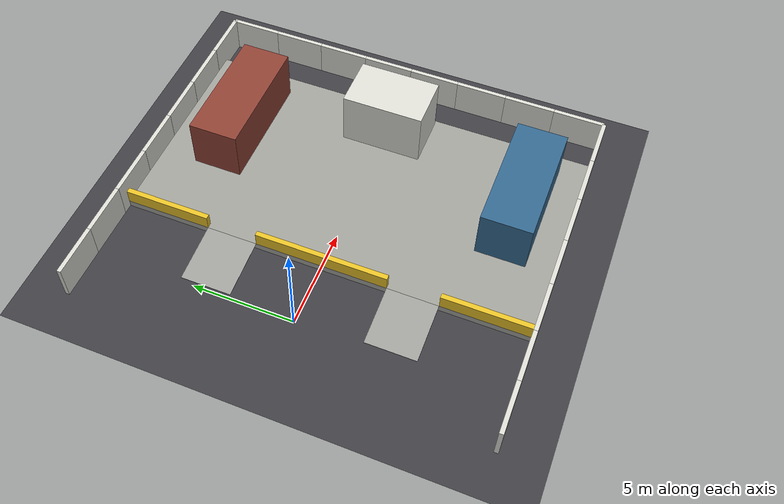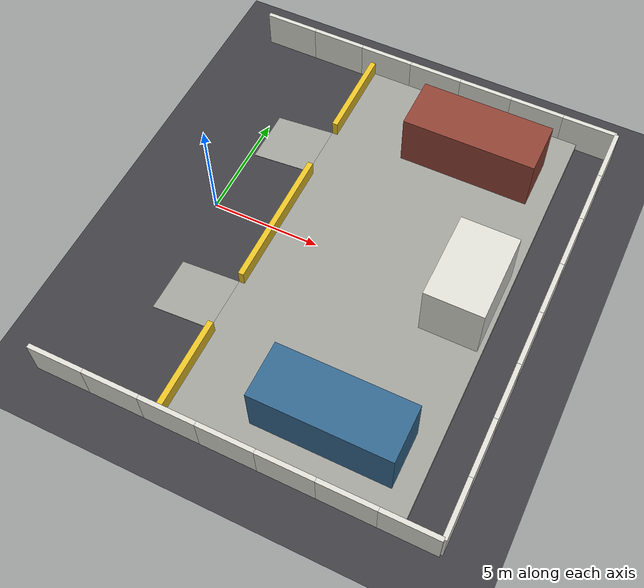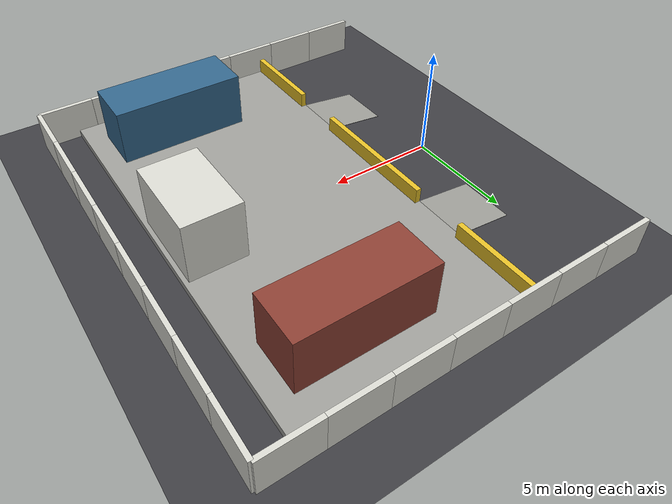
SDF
<sdf version="1.9">
 <world name="default">
  <model name="ground_plane">
   <static>true</static>
   <link name="link">
    <collision name="collision">
     <geometry><plane><normal>0 0 1</normal><size>200 200</size></plane></geometry>
     <surface><friction><ode><mu>0.9</mu><mu2>0.9</mu2></ode></friction></surface>
    </collision>
    <visual name="visual">
     <geometry><plane><normal>0 0 1</normal><size>200 200</size></plane></geometry>
     <material>
      <ambient>0.120 0.120 0.130 1</ambient>
      <diffuse>0.240 0.240 0.260 1</diffuse>
      <specular>0.05 0.05 0.05 1</specular>
      <pbr>
       <metal>
        <albedo_map>materials/textures/asphalt.png</albedo_map>
        <metalness>0.0</metalness>
        <roughness>0.9</roughness>
       </metal>
      </pbr>
     </material>
    </visual>
   </link>
  </model>
  <model name="wall_east_0">
   <static>true</static>
   <pose>15.10000 -8.83750 0.90000 0 0.000000 0</pose>
   <link name="link">
    <collision name="collision">
     <geometry><box><size>0.20000 2.52500 1.80000</size></box></geometry>
     <surface><friction><ode><mu>1.0</mu><mu2>1.0</mu2></ode></friction></surface>
    </collision>
    <visual name="visual">
     <geometry><box><size>0.20000 2.52500 1.80000</size></box></geometry>
     <material>
      <ambient>0.425 0.425 0.410 1</ambient>
      <diffuse>0.850 0.850 0.820 1</diffuse>
      <specular>0.1 0.1 0.1 1</specular>
      <pbr>
       <metal>
        <albedo_map>materials/textures/painted_wall.png</albedo_map>
        <metalness>0.0</metalness>
        <roughness>0.85</roughness>
       </metal>
      </pbr>
     </material>
    </visual>
   </link>
  </model>
  <model name="wall_east_1">
   <static>true</static>
   <pose>15.10000 -6.31250 0.90000 0 0.000000 0</pose>
   <link name="link">
    <collision name="collision">
     <geometry><box><size>0.20000 2.52500 1.80000</size></box></geometry>
     <surface><friction><ode><mu>1.0</mu><mu2>1.0</mu2></ode></friction></surface>
    </collision>
    <visual name="visual">
     <geometry><box><size>0.20000 2.52500 1.80000</size></box></geometry>
     <material>
      <ambient>0.425 0.425 0.410 1</ambient>
      <diffuse>0.850 0.850 0.820 1</diffuse>
      <specular>0.1 0.1 0.1 1</specular>
      <pbr>
       <metal>
        <albedo_map>materials/textures/painted_wall.png</albedo_map>
        <metalness>0.0</metalness>
        <roughness>0.85</roughness>
       </metal>
      </pbr>
     </material>
    </visual>
   </link>
  </model>
  <model name="wall_east_2">
   <static>true</static>
   <pose>15.10000 -3.78750 0.90000 0 0.000000 0</pose>
   <link name="link">
    <collision name="collision">
     <geometry><box><size>0.20000 2.52500 1.80000</size></box></geometry>
     <surface><friction><ode><mu>1.0</mu><mu2>1.0</mu2></ode></friction></surface>
    </collision>
    <visual name="visual">
     <geometry><box><size>0.20000 2.52500 1.80000</size></box></geometry>
     <material>
      <ambient>0.425 0.425 0.410 1</ambient>
      <diffuse>0.850 0.850 0.820 1</diffuse>
      <specular>0.1 0.1 0.1 1</specular>
      <pbr>
       <metal>
        <albedo_map>materials/textures/painted_wall.png</albedo_map>
        <metalness>0.0</metalness>
        <roughness>0.85</roughness>
       </metal>
      </pbr>
     </material>
    </visual>
   </link>
  </model>
  <model name="wall_east_3">
   <static>true</static>
   <pose>15.10000 -1.26250 0.90000 0 0.000000 0</pose>
   <link name="link">
    <collision name="collision">
     <geometry><box><size>0.20000 2.52500 1.80000</size></box></geometry>
     <surface><friction><ode><mu>1.0</mu><mu2>1.0</mu2></ode></friction></surface>
    </collision>
    <visual name="visual">
     <geometry><box><size>0.20000 2.52500 1.80000</size></box></geometry>
     <material>
      <ambient>0.425 0.425 0.410 1</ambient>
      <diffuse>0.850 0.850 0.820 1</diffuse>
      <specular>0.1 0.1 0.1 1</specular>
      <pbr>
       <metal>
        <albedo_map>materials/textures/painted_wall.png</albedo_map>
        <metalness>0.0</metalness>
        <roughness>0.85</roughness>
       </metal>
      </pbr>
     </material>
    </visual>
   </link>
  </model>
  <model name="wall_east_4">
   <static>true</static>
   <pose>15.10000 1.26250 0.90000 0 0.000000 0</pose>
   <link name="link">
    <collision name="collision">
     <geometry><box><size>0.20000 2.52500 1.80000</size></box></geometry>
     <surface><friction><ode><mu>1.0</mu><mu2>1.0</mu2></ode></friction></surface>
    </collision>
    <visual name="visual">
     <geometry><box><size>0.20000 2.52500 1.80000</size></box></geometry>
     <material>
      <ambient>0.425 0.425 0.410 1</ambient>
      <diffuse>0.850 0.850 0.820 1</diffuse>
      <specular>0.1 0.1 0.1 1</specular>
      <pbr>
       <metal>
        <albedo_map>materials/textures/painted_wall.png</albedo_map>
        <metalness>0.0</metalness>
        <roughness>0.85</roughness>
       </metal>
      </pbr>
     </material>
    </visual>
   </link>
  </model>
  <model name="wall_east_5">
   <static>true</static>
   <pose>15.10000 3.78750 0.90000 0 0.000000 0</pose>
   <link name="link">
    <collision name="collision">
     <geometry><box><size>0.20000 2.52500 1.80000</size></box></geometry>
     <surface><friction><ode><mu>1.0</mu><mu2>1.0</mu2></ode></friction></surface>
    </collision>
    <visual name="visual">
     <geometry><box><size>0.20000 2.52500 1.80000</size></box></geometry>
     <material>
      <ambient>0.425 0.425 0.410 1</ambient>
      <diffuse>0.850 0.850 0.820 1</diffuse>
      <specular>0.1 0.1 0.1 1</specular>
      <pbr>
       <metal>
        <albedo_map>materials/textures/painted_wall.png</albedo_map>
        <metalness>0.0</metalness>
        <roughness>0.85</roughness>
       </metal>
      </pbr>
     </material>
    </visual>
   </link>
  </model>
  <model name="wall_east_6">
   <static>true</static>
   <pose>15.10000 6.31250 0.90000 0 0.000000 0</pose>
   <link name="link">
    <collision name="collision">
     <geometry><box><size>0.20000 2.52500 1.80000</size></box></geometry>
     <surface><friction><ode><mu>1.0</mu><mu2>1.0</mu2></ode></friction></surface>
    </collision>
    <visual name="visual">
     <geometry><box><size>0.20000 2.52500 1.80000</size></box></geometry>
     <material>
      <ambient>0.425 0.425 0.410 1</ambient>
      <diffuse>0.850 0.850 0.820 1</diffuse>
      <specular>0.1 0.1 0.1 1</specular>
      <pbr>
       <metal>
        <albedo_map>materials/textures/painted_wall.png</albedo_map>
        <metalness>0.0</metalness>
        <roughness>0.85</roughness>
       </metal>
      </pbr>
     </material>
    </visual>
   </link>
  </model>
  <model name="wall_east_7">
   <static>true</static>
   <pose>15.10000 8.83750 0.90000 0 0.000000 0</pose>
   <link name="link">
    <collision name="collision">
     <geometry><box><size>0.20000 2.52500 1.80000</size></box></geometry>
     <surface><friction><ode><mu>1.0</mu><mu2>1.0</mu2></ode></friction></surface>
    </collision>
    <visual name="visual">
     <geometry><box><size>0.20000 2.52500 1.80000</size></box></geometry>
     <material>
      <ambient>0.425 0.425 0.410 1</ambient>
      <diffuse>0.850 0.850 0.820 1</diffuse>
      <specular>0.1 0.1 0.1 1</specular>
      <pbr>
       <metal>
        <albedo_map>materials/textures/painted_wall.png</albedo_map>
        <metalness>0.0</metalness>
        <roughness>0.85</roughness>
       </metal>
      </pbr>
     </material>
    </visual>
   </link>
  </model>
  <model name="wall_north_5">
   <static>true</static>
   <pose>-1.25833 10.10000 0.90000 0 0.000000 0</pose>
   <link name="link">
    <collision name="collision">
     <geometry><box><size>2.51667 0.20000 1.80000</size></box></geometry>
     <surface><friction><ode><mu>1.0</mu><mu2>1.0</mu2></ode></friction></surface>
    </collision>
    <visual name="visual">
     <geometry><box><size>2.51667 0.20000 1.80000</size></box></geometry>
     <material>
      <ambient>0.425 0.425 0.410 1</ambient>
      <diffuse>0.850 0.850 0.820 1</diffuse>
      <specular>0.1 0.1 0.1 1</specular>
      <pbr>
       <metal>
        <albedo_map>materials/textures/painted_wall.png</albedo_map>
        <metalness>0.0</metalness>
        <roughness>0.85</roughness>
       </metal>
      </pbr>
     </material>
    </visual>
   </link>
  </model>
  <model name="wall_north_6">
   <static>true</static>
   <pose>1.25833 10.10000 0.90000 0 0.000000 0</pose>
   <link name="link">
    <collision name="collision">
     <geometry><box><size>2.51667 0.20000 1.80000</size></box></geometry>
     <surface><friction><ode><mu>1.0</mu><mu2>1.0</mu2></ode></friction></surface>
    </collision>
    <visual name="visual">
     <geometry><box><size>2.51667 0.20000 1.80000</size></box></geometry>
     <material>
      <ambient>0.425 0.425 0.410 1</ambient>
      <diffuse>0.850 0.850 0.820 1</diffuse>
      <specular>0.1 0.1 0.1 1</specular>
      <pbr>
       <metal>
        <albedo_map>materials/textures/painted_wall.png</albedo_map>
        <metalness>0.0</metalness>
        <roughness>0.85</roughness>
       </metal>
      </pbr>
     </material>
    </visual>
   </link>
  </model>
  <model name="wall_north_7">
   <static>true</static>
   <pose>3.77500 10.10000 0.90000 0 0.000000 0</pose>
   <link name="link">
    <collision name="collision">
     <geometry><box><size>2.51667 0.20000 1.80000</size></box></geometry>
     <surface><friction><ode><mu>1.0</mu><mu2>1.0</mu2></ode></friction></surface>
    </collision>
    <visual name="visual">
     <geometry><box><size>2.51667 0.20000 1.80000</size></box></geometry>
     <material>
      <ambient>0.425 0.425 0.410 1</ambient>
      <diffuse>0.850 0.850 0.820 1</diffuse>
      <specular>0.1 0.1 0.1 1</specular>
      <pbr>
       <metal>
        <albedo_map>materials/textures/painted_wall.png</albedo_map>
        <metalness>0.0</metalness>
        <roughness>0.85</roughness>
       </metal>
      </pbr>
     </material>
    </visual>
   </link>
  </model>
  <model name="wall_north_8">
   <static>true</static>
   <pose>6.29167 10.10000 0.90000 0 0.000000 0</pose>
   <link name="link">
    <collision name="collision">
     <geometry><box><size>2.51667 0.20000 1.80000</size></box></geometry>
     <surface><friction><ode><mu>1.0</mu><mu2>1.0</mu2></ode></friction></surface>
    </collision>
    <visual name="visual">
     <geometry><box><size>2.51667 0.20000 1.80000</size></box></geometry>
     <material>
      <ambient>0.425 0.425 0.410 1</ambient>
      <diffuse>0.850 0.850 0.820 1</diffuse>
      <specular>0.1 0.1 0.1 1</specular>
      <pbr>
       <metal>
        <albedo_map>materials/textures/painted_wall.png</albedo_map>
        <metalness>0.0</metalness>
        <roughness>0.85</roughness>
       </metal>
      </pbr>
     </material>
    </visual>
   </link>
  </model>
  <model name="wall_north_9">
   <static>true</static>
   <pose>8.80833 10.10000 0.90000 0 0.000000 0</pose>
   <link name="link">
    <collision name="collision">
     <geometry><box><size>2.51667 0.20000 1.80000</size></box></geometry>
     <surface><friction><ode><mu>1.0</mu><mu2>1.0</mu2></ode></friction></surface>
    </collision>
    <visual name="visual">
     <geometry><box><size>2.51667 0.20000 1.80000</size></box></geometry>
     <material>
      <ambient>0.425 0.425 0.410 1</ambient>
      <diffuse>0.850 0.850 0.820 1</diffuse>
      <specular>0.1 0.1 0.1 1</specular>
      <pbr>
       <metal>
        <albedo_map>materials/textures/painted_wall.png</albedo_map>
        <metalness>0.0</metalness>
        <roughness>0.85</roughness>
       </metal>
      </pbr>
     </material>
    </visual>
   </link>
  </model>
  <model name="wall_north_10">
   <static>true</static>
   <pose>11.32500 10.10000 0.90000 0 0.000000 0</pose>
   <link name="link">
    <collision name="collision">
     <geometry><box><size>2.51667 0.20000 1.80000</size></box></geometry>
     <surface><friction><ode><mu>1.0</mu><mu2>1.0</mu2></ode></friction></surface>
    </collision>
    <visual name="visual">
     <geometry><box><size>2.51667 0.20000 1.80000</size></box></geometry>
     <material>
      <ambient>0.425 0.425 0.410 1</ambient>
      <diffuse>0.850 0.850 0.820 1</diffuse>
      <specular>0.1 0.1 0.1 1</specular>
      <pbr>
       <metal>
        <albedo_map>materials/textures/painted_wall.png</albedo_map>
        <metalness>0.0</metalness>
        <roughness>0.85</roughness>
       </metal>
      </pbr>
     </material>
    </visual>
   </link>
  </model>
  <model name="wall_north_11">
   <static>true</static>
   <pose>13.84167 10.10000 0.90000 0 0.000000 0</pose>
   <link name="link">
    <collision name="collision">
     <geometry><box><size>2.51667 0.20000 1.80000</size></box></geometry>
     <surface><friction><ode><mu>1.0</mu><mu2>1.0</mu2></ode></friction></surface>
    </collision>
    <visual name="visual">
     <geometry><box><size>2.51667 0.20000 1.80000</size></box></geometry>
     <material>
      <ambient>0.425 0.425 0.410 1</ambient>
      <diffuse>0.850 0.850 0.820 1</diffuse>
      <specular>0.1 0.1 0.1 1</specular>
      <pbr>
       <metal>
        <albedo_map>materials/textures/painted_wall.png</albedo_map>
        <metalness>0.0</metalness>
        <roughness>0.85</roughness>
       </metal>
      </pbr>
     </material>
    </visual>
   </link>
  </model>
  <model name="wall_south_5">
   <static>true</static>
   <pose>-1.25833 -10.10000 0.90000 0 0.000000 0</pose>
   <link name="link">
    <collision name="collision">
     <geometry><box><size>2.51667 0.20000 1.80000</size></box></geometry>
     <surface><friction><ode><mu>1.0</mu><mu2>1.0</mu2></ode></friction></surface>
    </collision>
    <visual name="visual">
     <geometry><box><size>2.51667 0.20000 1.80000</size></box></geometry>
     <material>
      <ambient>0.425 0.425 0.410 1</ambient>
      <diffuse>0.850 0.850 0.820 1</diffuse>
      <specular>0.1 0.1 0.1 1</specular>
      <pbr>
       <metal>
        <albedo_map>materials/textures/painted_wall.png</albedo_map>
        <metalness>0.0</metalness>
        <roughness>0.85</roughness>
       </metal>
      </pbr>
     </material>
    </visual>
   </link>
  </model>
  <model name="wall_south_6">
   <static>true</static>
   <pose>1.25833 -10.10000 0.90000 0 0.000000 0</pose>
   <link name="link">
    <collision name="collision">
     <geometry><box><size>2.51667 0.20000 1.80000</size></box></geometry>
     <surface><friction><ode><mu>1.0</mu><mu2>1.0</mu2></ode></friction></surface>
    </collision>
    <visual name="visual">
     <geometry><box><size>2.51667 0.20000 1.80000</size></box></geometry>
     <material>
      <ambient>0.425 0.425 0.410 1</ambient>
      <diffuse>0.850 0.850 0.820 1</diffuse>
      <specular>0.1 0.1 0.1 1</specular>
      <pbr>
       <metal>
        <albedo_map>materials/textures/painted_wall.png</albedo_map>
        <metalness>0.0</metalness>
        <roughness>0.85</roughness>
       </metal>
      </pbr>
     </material>
    </visual>
   </link>
  </model>
  <model name="wall_south_7">
   <static>true</static>
   <pose>3.77500 -10.10000 0.90000 0 0.000000 0</pose>
   <link name="link">
    <collision name="collision">
     <geometry><box><size>2.51667 0.20000 1.80000</size></box></geometry>
     <surface><friction><ode><mu>1.0</mu><mu2>1.0</mu2></ode></friction></surface>
    </collision>
    <visual name="visual">
     <geometry><box><size>2.51667 0.20000 1.80000</size></box></geometry>
     <material>
      <ambient>0.425 0.425 0.410 1</ambient>
      <diffuse>0.850 0.850 0.820 1</diffuse>
      <specular>0.1 0.1 0.1 1</specular>
      <pbr>
       <metal>
        <albedo_map>materials/textures/painted_wall.png</albedo_map>
        <metalness>0.0</metalness>
        <roughness>0.85</roughness>
       </metal>
      </pbr>
     </material>
    </visual>
   </link>
  </model>
  <model name="wall_south_8">
   <static>true</static>
   <pose>6.29167 -10.10000 0.90000 0 0.000000 0</pose>
   <link name="link">
    <collision name="collision">
     <geometry><box><size>2.51667 0.20000 1.80000</size></box></geometry>
     <surface><friction><ode><mu>1.0</mu><mu2>1.0</mu2></ode></friction></surface>
    </collision>
    <visual name="visual">
     <geometry><box><size>2.51667 0.20000 1.80000</size></box></geometry>
     <material>
      <ambient>0.425 0.425 0.410 1</ambient>
      <diffuse>0.850 0.850 0.820 1</diffuse>
      <specular>0.1 0.1 0.1 1</specular>
      <pbr>
       <metal>
        <albedo_map>materials/textures/painted_wall.png</albedo_map>
        <metalness>0.0</metalness>
        <roughness>0.85</roughness>
       </metal>
      </pbr>
     </material>
    </visual>
   </link>
  </model>
  <model name="wall_south_9">
   <static>true</static>
   <pose>8.80833 -10.10000 0.90000 0 0.000000 0</pose>
   <link name="link">
    <collision name="collision">
     <geometry><box><size>2.51667 0.20000 1.80000</size></box></geometry>
     <surface><friction><ode><mu>1.0</mu><mu2>1.0</mu2></ode></friction></surface>
    </collision>
    <visual name="visual">
     <geometry><box><size>2.51667 0.20000 1.80000</size></box></geometry>
     <material>
      <ambient>0.425 0.425 0.410 1</ambient>
      <diffuse>0.850 0.850 0.820 1</diffuse>
      <specular>0.1 0.1 0.1 1</specular>
      <pbr>
       <metal>
        <albedo_map>materials/textures/painted_wall.png</albedo_map>
        <metalness>0.0</metalness>
        <roughness>0.85</roughness>
       </metal>
      </pbr>
     </material>
    </visual>
   </link>
  </model>
  <model name="wall_south_10">
   <static>true</static>
   <pose>11.32500 -10.10000 0.90000 0 0.000000 0</pose>
   <link name="link">
    <collision name="collision">
     <geometry><box><size>2.51667 0.20000 1.80000</size></box></geometry>
     <surface><friction><ode><mu>1.0</mu><mu2>1.0</mu2></ode></friction></surface>
    </collision>
    <visual name="visual">
     <geometry><box><size>2.51667 0.20000 1.80000</size></box></geometry>
     <material>
      <ambient>0.425 0.425 0.410 1</ambient>
      <diffuse>0.850 0.850 0.820 1</diffuse>
      <specular>0.1 0.1 0.1 1</specular>
      <pbr>
       <metal>
        <albedo_map>materials/textures/painted_wall.png</albedo_map>
        <metalness>0.0</metalness>
        <roughness>0.85</roughness>
       </metal>
      </pbr>
     </material>
    </visual>
   </link>
  </model>
  <model name="wall_south_11">
   <static>true</static>
   <pose>13.84167 -10.10000 0.90000 0 0.000000 0</pose>
   <link name="link">
    <collision name="collision">
     <geometry><box><size>2.51667 0.20000 1.80000</size></box></geometry>
     <surface><friction><ode><mu>1.0</mu><mu2>1.0</mu2></ode></friction></surface>
    </collision>
    <visual name="visual">
     <geometry><box><size>2.51667 0.20000 1.80000</size></box></geometry>
     <material>
      <ambient>0.425 0.425 0.410 1</ambient>
      <diffuse>0.850 0.850 0.820 1</diffuse>
      <specular>0.1 0.1 0.1 1</specular>
      <pbr>
       <metal>
        <albedo_map>materials/textures/painted_wall.png</albedo_map>
        <metalness>0.0</metalness>
        <roughness>0.85</roughness>
       </metal>
      </pbr>
     </material>
    </visual>
   </link>
  </model>
  <model name="ramp_north">
   <static>true</static>
   <pose>1.60117 4.50000 0.17514 0 -0.117267 0</pose>
   <link name="link">
    <collision name="collision">
     <geometry><box><size>2.81936 2.50000 0.02000</size></box></geometry>
     <surface><friction><ode><mu>1.0</mu><mu2>1.0</mu2></ode></friction></surface>
    </collision>
    <visual name="visual">
     <geometry><box><size>2.81936 2.50000 0.02000</size></box></geometry>
     <material>
      <ambient>0.310 0.310 0.300 1</ambient>
      <diffuse>0.620 0.620 0.600 1</diffuse>
      <specular>0.1 0.1 0.1 1</specular>
      <pbr>
       <metal>
        <albedo_map>materials/textures/concrete.png</albedo_map>
        <metalness>0.0</metalness>
        <roughness>0.85</roughness>
       </metal>
      </pbr>
     </material>
    </visual>
   </link>
  </model>
  <model name="ramp_south">
   <static>true</static>
   <pose>1.60117 -4.50000 0.17514 0 -0.117267 0</pose>
   <link name="link">
    <collision name="collision">
     <geometry><box><size>2.81936 2.50000 0.02000</size></box></geometry>
     <surface><friction><ode><mu>1.0</mu><mu2>1.0</mu2></ode></friction></surface>
    </collision>
    <visual name="visual">
     <geometry><box><size>2.81936 2.50000 0.02000</size></box></geometry>
     <material>
      <ambient>0.310 0.310 0.300 1</ambient>
      <diffuse>0.620 0.620 0.600 1</diffuse>
      <specular>0.1 0.1 0.1 1</specular>
      <pbr>
       <metal>
        <albedo_map>materials/textures/concrete.png</albedo_map>
        <metalness>0.0</metalness>
        <roughness>0.85</roughness>
       </metal>
      </pbr>
     </material>
    </visual>
   </link>
  </model>
  <model name="platform">
   <static>true</static>
   <pose>8.25000 0.00000 0.17500 0 0.000000 0</pose>
   <link name="link">
    <collision name="collision">
     <geometry><box><size>10.50000 20.00000 0.35000</size></box></geometry>
     <surface><friction><ode><mu>1.0</mu><mu2>1.0</mu2></ode></friction></surface>
    </collision>
    <visual name="visual">
     <geometry><box><size>10.50000 20.00000 0.35000</size></box></geometry>
     <material>
      <ambient>0.310 0.310 0.300 1</ambient>
      <diffuse>0.620 0.620 0.600 1</diffuse>
      <specular>0.1 0.1 0.1 1</specular>
      <pbr>
       <metal>
        <albedo_map>materials/textures/concrete.png</albedo_map>
        <metalness>0.0</metalness>
        <roughness>0.85</roughness>
       </metal>
      </pbr>
     </material>
    </visual>
   </link>
  </model>
  <model name="barrier_0">
   <static>true</static>
   <pose>3.12500 -7.87500 0.70000 0 0.000000 0</pose>
   <link name="link">
    <collision name="collision">
     <geometry><box><size>0.25000 4.25000 0.70000</size></box></geometry>
     <surface><friction><ode><mu>1.0</mu><mu2>1.0</mu2></ode></friction></surface>
    </collision>
    <visual name="visual">
     <geometry><box><size>0.25000 4.25000 0.70000</size></box></geometry>
     <material>
      <ambient>0.450 0.375 0.075 1</ambient>
      <diffuse>0.900 0.750 0.150 1</diffuse>
      <specular>0.1 0.1 0.1 1</specular>
     </material>
    </visual>
   </link>
  </model>
  <model name="barrier_1">
   <static>true</static>
   <pose>3.12500 0.00000 0.70000 0 0.000000 0</pose>
   <link name="link">
    <collision name="collision">
     <geometry><box><size>0.25000 6.50000 0.70000</size></box></geometry>
     <surface><friction><ode><mu>1.0</mu><mu2>1.0</mu2></ode></friction></surface>
    </collision>
    <visual name="visual">
     <geometry><box><size>0.25000 6.50000 0.70000</size></box></geometry>
     <material>
      <ambient>0.450 0.375 0.075 1</ambient>
      <diffuse>0.900 0.750 0.150 1</diffuse>
      <specular>0.1 0.1 0.1 1</specular>
     </material>
    </visual>
   </link>
  </model>
  <model name="barrier_2">
   <static>true</static>
   <pose>3.12500 7.87500 0.70000 0 0.000000 0</pose>
   <link name="link">
    <collision name="collision">
     <geometry><box><size>0.25000 4.25000 0.70000</size></box></geometry>
     <surface><friction><ode><mu>1.0</mu><mu2>1.0</mu2></ode></friction></surface>
    </collision>
    <visual name="visual">
     <geometry><box><size>0.25000 4.25000 0.70000</size></box></geometry>
     <material>
      <ambient>0.450 0.375 0.075 1</ambient>
      <diffuse>0.900 0.750 0.150 1</diffuse>
      <specular>0.1 0.1 0.1 1</specular>
     </material>
    </visual>
   </link>
  </model>
  <model name="container_0">
   <static>true</static>
   <pose>9.50000 7.00000 1.64500 0 0.000000 0</pose>
   <link name="link">
    <collision name="collision">
     <geometry><box><size>6.06000 2.44000 2.59000</size></box></geometry>
     <surface><friction><ode><mu>1.0</mu><mu2>1.0</mu2></ode></friction></surface>
    </collision>
    <visual name="visual">
     <geometry><box><size>6.06000 2.44000 2.59000</size></box></geometry>
     <material>
      <ambient>0.275 0.125 0.100 1</ambient>
      <diffuse>0.550 0.250 0.200 1</diffuse>
      <specular>0.1 0.1 0.1 1</specular>
     </material>
    </visual>
   </link>
  </model>
  <model name="container_1">
   <static>true</static>
   <pose>9.50000 -7.50000 1.64500 0 0.000000 0</pose>
   <link name="link">
    <collision name="collision">
     <geometry><box><size>6.06000 2.44000 2.59000</size></box></geometry>
     <surface><friction><ode><mu>1.0</mu><mu2>1.0</mu2></ode></friction></surface>
    </collision>
    <visual name="visual">
     <geometry><box><size>6.06000 2.44000 2.59000</size></box></geometry>
     <material>
      <ambient>0.100 0.200 0.275 1</ambient>
      <diffuse>0.200 0.400 0.550 1</diffuse>
      <specular>0.1 0.1 0.1 1</specular>
     </material>
    </visual>
   </link>
  </model>
  <model name="dock_office">
   <static>true</static>
   <pose>12.00000 0.00000 1.75000 0 0.000000 0</pose>
   <link name="link">
    <collision name="collision">
     <geometry><box><size>2.60000 4.00000 2.80000</size></box></geometry>
     <surface><friction><ode><mu>1.0</mu><mu2>1.0</mu2></ode></friction></surface>
    </collision>
    <visual name="visual">
     <geometry><box><size>2.60000 4.00000 2.80000</size></box></geometry>
     <material>
      <ambient>0.425 0.425 0.410 1</ambient>
      <diffuse>0.850 0.850 0.820 1</diffuse>
      <specular>0.1 0.1 0.1 1</specular>
      <pbr>
       <metal>
        <albedo_map>materials/textures/painted_wall.png</albedo_map>
        <metalness>0.0</metalness>
        <roughness>0.85</roughness>
       </metal>
      </pbr>
     </material>
    </visual>
   </link>
  </model>
 </world>
</sdf>
